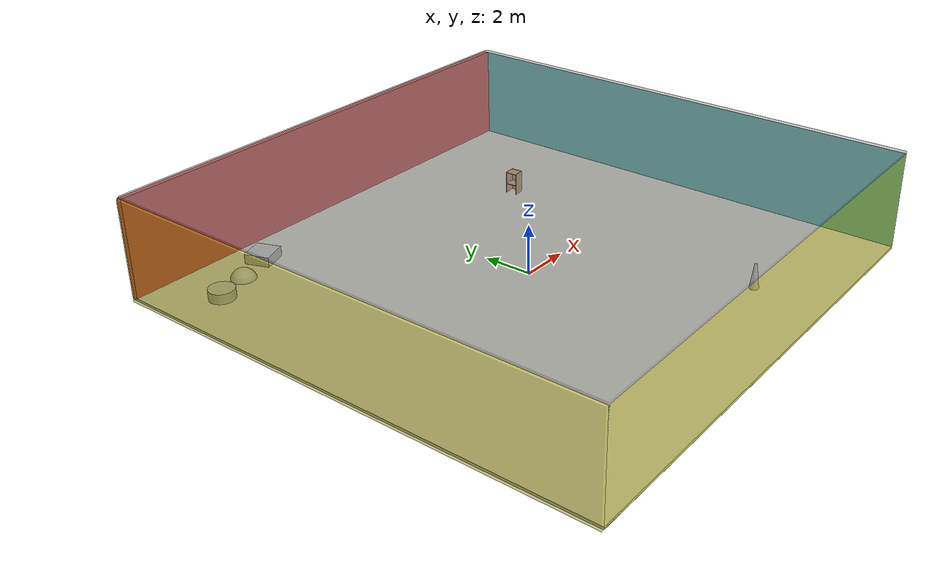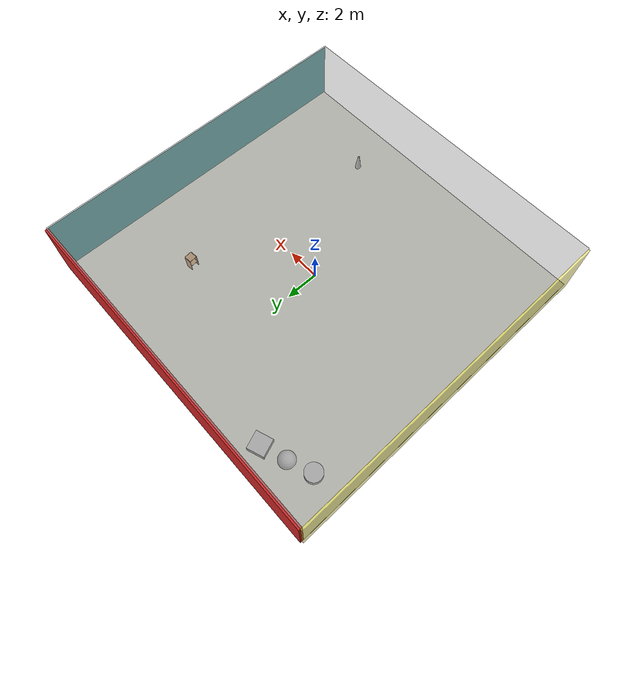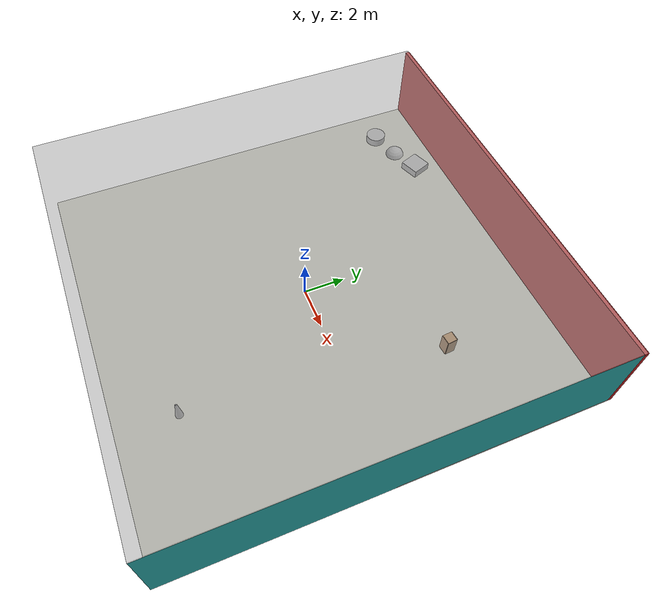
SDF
<sdf version="1.4">
 <world name="default">
  <physics type="ode">
   <max_step_size>0.001</max_step_size>
   <real_time_factor>1</real_time_factor>
   <real_time_update_rate>1000</real_time_update_rate>
   <gravity>0 0 -9.8</gravity>
  </physics>
  <scene><ambient>0.4 0.4 0.4 1</ambient><background>0.7 0.7 0.7 1</background><shadows>1</shadows></scene>
  <model name="Surrounding">
   <static>1</static>
   <link name="Ceiling">
    <collision name="Ceiling_Collision"><geometry><box><size>20 20 0.1</size></box></geometry></collision>
    <visual name="Ceiling_Visual">
     <geometry><box><size>20 20 0.1</size></box></geometry>
     <material>
      <script><uri>file://media/materials/scripts/gazebo.material</uri><name>Gazebo/GreyTransparent</name></script>
     </material>
    </visual>
    <pose>0 0 4.05 0 0 0</pose>
   </link>
   <link name="Wall_South">
    <collision name="Wall_South_Collision">
     <geometry><box><size>20 0 4</size></box></geometry>
     <pose>0 0 2 0 -0 0</pose>
    </collision>
    <visual name="Wall_South_Visual">
     <pose>0 0 2 0 -0 0</pose>
     <geometry><box><size>20 0 4</size></box></geometry>
     <material>
      <script>
       <uri>file://media/materials/scripts/gazebo.material</uri>
       <name>Gazebo/YellowTransparent</name>
      </script>
     </material>
    </visual>
    <velocity_decay><linear>0</linear><angular>0</angular></velocity_decay>
    <pose>0 -10 0 0 -0 0</pose>
   </link>
   <link name="Wall_East">
    <collision name="Wall_21_Collision">
     <geometry><box><size>20 0 4</size></box></geometry>
     <pose>0 0 2 0 -0 0</pose>
    </collision>
    <visual name="Wall_21_Visual">
     <pose>0 0 2 0 -0 0</pose>
     <geometry><box><size>20 0 4</size></box></geometry>
     <material>
      <script><uri>file://media/materials/scripts/gazebo.material</uri><name>Gazebo/TurquoiseGlow</name></script>
     </material>
    </visual>
    <velocity_decay><linear>0</linear><angular>0</angular></velocity_decay>
    <pose>10 0 0 0 -0 1.5708</pose>
   </link>
   <link name="Wall_North">
    <collision name="Wall_22_Collision">
     <geometry><box><size>20 0.2 4</size></box></geometry>
     <pose>0 0 2 0 -0 0</pose>
    </collision>
    <visual name="Wall_22_Visual">
     <pose>0 0 2 0 -0 0</pose>
     <geometry><box><size>20 0.2 4</size></box></geometry>
     <material>
      <script><uri>file://media/materials/scripts/gazebo.material</uri><name>Gazebo/RedGlow</name></script>
     </material>
    </visual>
    <velocity_decay><linear>0</linear><angular>0</angular></velocity_decay>
    <pose>0 10 0 0 -0 0</pose>
   </link>
   <link name="Wall_West">
    <collision name="Wall_23_Collision">
     <geometry><box><size>20 0.2 4</size></box></geometry>
     <pose>0 0 2 0 -0 0</pose>
    </collision>
    <visual name="Wall_23_Visual">
     <pose>0 0 2 0 -0 0</pose>
     <geometry><box><size>20 0.2 4</size></box></geometry>
     <material>
      <script>
       <uri>file://media/materials/scripts/gazebo.material</uri>
       <name>Gazebo/YellowTransparent</name>
      </script>
     </material>
    </visual>
    <velocity_decay><linear>0</linear><angular>0</angular></velocity_decay>
    <pose>-10 0 0 0 0 -1.5708</pose>
   </link>
   <link name="Ground_link">
    <collision name="collision">
     <pose>0 0 .05 0 -0 0</pose>
     <geometry><box><size>20 20 0.1</size></box></geometry>
    </collision>
    <visual name="visual">
     <pose>0 0 .05 0 -0 0</pose>
     <geometry><box><size>20 20 0.1</size></box></geometry>
     <material>
      <script><uri>file://media/materials/scripts/gazebo.material</uri><name>Gazebo/PaintedWall</name></script>
     </material>
    </visual>
   </link>
   <static>1</static>
  </model>
  <spherical_coordinates>
   <surface_model>EARTH_WGS84</surface_model>
   <latitude_deg>0</latitude_deg>
   <longitude_deg>0</longitude_deg>
   <elevation>0</elevation>
   <heading_deg>0</heading_deg>
  </spherical_coordinates>
  <light name="lightball_0" type="diffuse">
   <diffuse>0.8 0.8 0.8 1</diffuse>
   <specular>0.2 0.2 0.2 1</specular>
   <attenuation>
    <range>100</range>
    <constant>0.7</constant>
    <linear>0.01</linear>
    <quadratic>0.001</quadratic>
   </attenuation>
   <direction>-0.5 0.1 -0.9</direction>
   <pose>0.741472664639 2.00511286218 1.83349467282 0 0 0</pose>
  </light>
  <light name="lightball_1" type="diffuse">
   <diffuse>0.8 0.8 0.8 1</diffuse>
   <specular>0.2 0.2 0.2 1</specular>
   <attenuation>
    <range>100</range>
    <constant>0.7</constant>
    <linear>0.01</linear>
    <quadratic>0.001</quadratic>
   </attenuation>
   <direction>-0.5 0.1 -0.9</direction>
   <pose>-7.41787032016 5.65401068982 1.00093434013 0 0 0</pose>
  </light>
  <light name="lightball_2" type="diffuse">
   <diffuse>0.8 0.8 0.8 1</diffuse>
   <specular>0.2 0.2 0.2 1</specular>
   <attenuation>
    <range>100</range>
    <constant>0.7</constant>
    <linear>0.01</linear>
    <quadratic>0.001</quadratic>
   </attenuation>
   <direction>-0.5 0.1 -0.9</direction>
   <pose>-2.66647795777 7.02061406552 1.01632962788 0 0 0</pose>
  </light>
  <light name="lightball_3" type="diffuse">
   <diffuse>0.8 0.8 0.8 1</diffuse>
   <specular>0.2 0.2 0.2 1</specular>
   <attenuation>
    <range>100</range>
    <constant>0.7</constant>
    <linear>0.01</linear>
    <quadratic>0.001</quadratic>
   </attenuation>
   <direction>-0.5 0.1 -0.9</direction>
   <pose>6.43445724911 -1.48269056994 2.75604254988 0 0 0</pose>
  </light>
  <light name="lightball_4" type="diffuse">
   <diffuse>0.8 0.8 0.8 1</diffuse>
   <specular>0.2 0.2 0.2 1</specular>
   <attenuation>
    <range>100</range>
    <constant>0.7</constant>
    <linear>0.01</linear>
    <quadratic>0.001</quadratic>
   </attenuation>
   <direction>-0.5 0.1 -0.9</direction>
   <pose>0.118135041155 -8.37213030787 3.73397852329 0 0 0</pose>
  </light>
  <light name="lightball_5" type="diffuse">
   <diffuse>0.8 0.8 0.8 1</diffuse>
   <specular>0.2 0.2 0.2 1</specular>
   <attenuation>
    <range>100</range>
    <constant>0.7</constant>
    <linear>0.01</linear>
    <quadratic>0.001</quadratic>
   </attenuation>
   <direction>-0.5 0.1 -0.9</direction>
   <pose>2.9500377865 -4.94317265473 0.803379072706 0 0 0</pose>
  </light>
  <light name="lightball_6" type="diffuse">
   <diffuse>0.8 0.8 0.8 1</diffuse>
   <specular>0.2 0.2 0.2 1</specular>
   <attenuation>
    <range>100</range>
    <constant>0.7</constant>
    <linear>0.01</linear>
    <quadratic>0.001</quadratic>
   </attenuation>
   <direction>-0.5 0.1 -0.9</direction>
   <pose>-7.30400531154 1.36646985491 3.63372398512 0 0 0</pose>
  </light>
  <light name="lightball_7" type="diffuse">
   <diffuse>0.8 0.8 0.8 1</diffuse>
   <specular>0.2 0.2 0.2 1</specular>
   <attenuation>
    <range>100</range>
    <constant>0.7</constant>
    <linear>0.01</linear>
    <quadratic>0.001</quadratic>
   </attenuation>
   <direction>-0.5 0.1 -0.9</direction>
   <pose>-3.60211914313 -4.41541247097 3.47670197583 0 0 0</pose>
  </light>
  <light name="lightball_8" type="diffuse">
   <diffuse>0.8 0.8 0.8 1</diffuse>
   <specular>0.2 0.2 0.2 1</specular>
   <attenuation>
    <range>100</range>
    <constant>0.7</constant>
    <linear>0.01</linear>
    <quadratic>0.001</quadratic>
   </attenuation>
   <direction>-0.5 0.1 -0.9</direction>
   <pose>8.1650890062 2.04323619215 3.73006295686 0 0 0</pose>
  </light>
  <light name="lightball_9" type="diffuse">
   <diffuse>0.8 0.8 0.8 1</diffuse>
   <specular>0.2 0.2 0.2 1</specular>
   <attenuation>
    <range>100</range>
    <constant>0.7</constant>
    <linear>0.01</linear>
    <quadratic>0.001</quadratic>
   </attenuation>
   <direction>-0.5 0.1 -0.9</direction>
   <pose>3.04881048009 4.41586679193 2.38567374512 0 0 0</pose>
  </light>
  <light name="lightball_10" type="diffuse">
   <diffuse>0.8 0.8 0.8 1</diffuse>
   <specular>0.2 0.2 0.2 1</specular>
   <attenuation>
    <range>100</range>
    <constant>0.7</constant>
    <linear>0.01</linear>
    <quadratic>0.001</quadratic>
   </attenuation>
   <direction>-0.5 0.1 -0.9</direction>
   <pose>-4.88468008495 4.9645061005 2.03306969949 0 0 0</pose>
  </light>
  <light name="lightball_11" type="diffuse">
   <diffuse>0.8 0.8 0.8 1</diffuse>
   <specular>0.2 0.2 0.2 1</specular>
   <attenuation>
    <range>100</range>
    <constant>0.7</constant>
    <linear>0.01</linear>
    <quadratic>0.001</quadratic>
   </attenuation>
   <direction>-0.5 0.1 -0.9</direction>
   <pose>-8.52027197828 -9.12316550559 1.63441447819 0 0 0</pose>
  </light>
  <include>
   <uri>model://textured_shapes</uri>
   <pose>-6.71277714598 8.05192565453 0 0 0 1.92115154797</pose>
  </include>
  <include>
   <uri>model://construction_cone</uri>
   <pose>3.89483796261 -7.2269726516 0 0 0 1.00579382635</pose>
  </include>
  <include><uri>model://cabinet</uri><pose>5.2333341534 4.74064121768 0 0 0 0.0835200833103</pose></include>
 </world>
</sdf>

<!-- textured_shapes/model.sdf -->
<sdf version="1.6">
  <model name="textured_shapes">
    <pose>0 0 0.5 0 0 0</pose>
    <link name="box">
      <pose>0 -1.5 0 0 0 0</pose>
      <collision name="collision">
        <geometry>
          <box>
            <size>1 1 1</size>
          </box>
        </geometry>
      </collision>
      <visual name="visual">
        <geometry>
          <box>
            <size>1 1 1</size>
          </box>
        </geometry>
        <material>
          <script>
            <uri>model://../model_source/models/textured_shapes/materials/scripts</uri>
            <uri>model://../model_source/models/textured_shapes/materials/textures</uri>
            <name>TexturedShape/Squares</name>
          </script>
        </material>
      </visual>
    </link>
    <link name="sphere">
      <collision name="collision">
        <geometry>
          <sphere>
            <radius>0.5</radius>
          </sphere>
        </geometry>
      </collision>
      <visual name="visual">
        <geometry>
          <sphere>
            <radius>0.5</radius>
          </sphere>
        </geometry>
        <material>
          <script>
            <uri>model://../model_source/models/textured_shapes/materials/scripts</uri>
            <uri>model://../model_source/models/textured_shapes/materials/textures</uri>
            <name>TexturedShape/Squares</name>
          </script>
        </material>
      </visual>
    </link>
    <link name="cylinder">
      <pose>0 1.5 0 0 0 0</pose>
      <collision name="collision">
        <geometry>
          <cylinder>
            <radius>0.5</radius>
            <length>1</length>
          </cylinder>
        </geometry>
      </collision>
      <visual name="visual">
        <geometry>
          <cylinder>
            <radius>0.5</radius>
            <length>1</length>
          </cylinder>
        </geometry>
        <material>
          <script>
            <uri>model://../model_source/models/textured_shapes/materials/scripts</uri>
            <uri>model://../model_source/models/textured_shapes/materials/textures</uri>
            <name>TexturedShape/Squares</name>
          </script>
        </material>
      </visual>
    </link>
  </model>
</sdf>

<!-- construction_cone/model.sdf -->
<sdf version="1.5">
  <model name="Construction Cone">
    <link name="link">
      <collision name="collision">
        <geometry>
          <mesh>
            <scale>10 10 10</scale>
            <uri>file://isr-testbed/construction_cone/meshes/construction_cone.dae</uri>
          </mesh>
        </geometry>
      </collision>
      <visual name="visual">
        <geometry>
          <mesh>
            <scale>10 10 10</scale>
            <uri>file://isr-testbed/construction_cone/meshes/construction_cone.dae</uri>
          </mesh>
        </geometry>
      </visual>
    </link>
  </model>
</sdf>

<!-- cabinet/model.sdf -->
<sdf version="1.5">
  <model name="cabinet">
    <static>true</static>
    <link name="cabinet_bottom_plate">
      <inertial>
        <pose>0 0 -1 0 0 0</pose>
        <inertia>
          <ixx>2.050000</ixx>
          <ixy>0</ixy>
          <ixz>0</ixz>
          <iyy>2.050000</iyy>
          <iyz>0</iyz>
          <izz>2.050000</izz>
        </inertia>
        <mass>25.000000</mass>
      </inertial>
      <collision name="cabinet_bottom_plate_geom">
        <pose>0 0 0.010000 0 0 0</pose>
        <geometry>
          <box>
            <size>0.450000 0.450000 0.020000</size>
          </box>
        </geometry>
      </collision>
      <visual name="cabinet_bottom_plate_geom_visual">
        <pose>0 0 0.010000 0 0 0</pose>
        <geometry>
          <box>
            <size>0.450000 0.450000 0.020000</size>
          </box>
        </geometry>
        <material>
          <script>
            <uri>model://media/materials/scripts/gazebo.material</uri>
            <name>Gazebo/Wood</name>
          </script>
        </material>
      </visual>
      <collision name="cabinet_bottom_plate_geom_cabinet_back_plate">
        <pose>0.235000 0 0.510000 0 0 0</pose>
        <geometry>
          <box>
            <size>0.020000 0.450000 1.020000</size>
          </box>
        </geometry>
      </collision>
      <visual name="cabinet_bottom_plate_geom_cabinet_back_plate_visual">
        <pose>0.235000 0 0.510000 0 0 0</pose>
        <geometry>
          <box>
            <size>0.020000 0.450000 1.020000</size>
          </box>
        </geometry>
        <material>
          <script>
            <uri>model://media/materials/scripts/gazebo.material</uri>
            <name>Gazebo/Wood</name>
          </script>
        </material>
      </visual>
      <collision name="cabinet_bottom_plate_geom_cabinet_left_plate">
        <pose>0 0.235000 0.510000 0 0 0</pose>
        <geometry>
          <box>
            <size>0.450000 0.020000 1.020000</size>
          </box>
        </geometry>
      </collision>
      <visual name="cabinet_bottom_plate_geom_cabinet_left_plate_visual">
        <pose>0 0.235000 0.510000 0 0 0</pose>
        <geometry>
          <box>
            <size>0.450000 0.020000 1.020000</size>
          </box>
        </geometry>
        <material>
          <script>
            <uri>model://media/materials/scripts/gazebo.material</uri>
            <name>Gazebo/Wood</name>
          </script>
        </material>
      </visual>
      <collision name="cabinet_bottom_plate_geom_cabinet_middle_plate">
        <pose>0 0 0.510000 0 0 0</pose>
        <geometry>
          <box>
            <size>0.450000 0.450000 0.020000</size>
          </box>
        </geometry>
      </collision>
      <visual name="cabinet_bottom_plate_geom_cabinet_middle_plate_visual">
        <pose>0 0 0.510000 0 0 0</pose>
        <geometry>
          <box>
            <size>0.450000 0.450000 0.020000</size>
          </box>
        </geometry>
        <material>
          <script>
            <uri>model://media/materials/scripts/gazebo.material</uri>
            <name>Gazebo/Wood</name>
          </script>
        </material>
      </visual>
      <collision name="cabinet_bottom_plate_geom_cabinet_right_plate">
        <pose>0 -0.235000 0.510000 0 0 0</pose>
        <geometry>
          <box>
            <size>0.450000 0.020000 1.020000</size>
          </box>
        </geometry>
      </collision>
      <visual name="cabinet_bottom_plate_geom_cabinet_right_plate_visual">
        <pose>0 -0.235000 0.510000 0 0 0</pose>
        <geometry>
          <box>
            <size>0.450000 0.020000 1.020000</size>
          </box>
        </geometry>
        <material>
          <script>
            <uri>model://media/materials/scripts/gazebo.material</uri>
            <name>Gazebo/Wood</name>
          </script>
        </material>
      </visual>
      <collision name="cabinet_bottom_plate_geom_cabinet_top_plate">
        <pose>0 0 1.010000 0 0 0</pose>
        <geometry>
          <box>
            <size>0.450000 0.450000 0.020000</size>
          </box>
        </geometry>
      </collision>
      <visual name="cabinet_bottom_plate_geom_cabinet_top_plate_visual">
        <pose>0 0 1.010000 0 0 0</pose>
        <geometry>
          <box>
            <size>0.450000 0.450000 0.020000</size>
          </box>
        </geometry>
        <material>
          <script>
            <uri>model://media/materials/scripts/gazebo.material</uri>
            <name>Gazebo/Wood</name>
          </script>
        </material>
      </visual>
    </link>
  </model>
</sdf>
